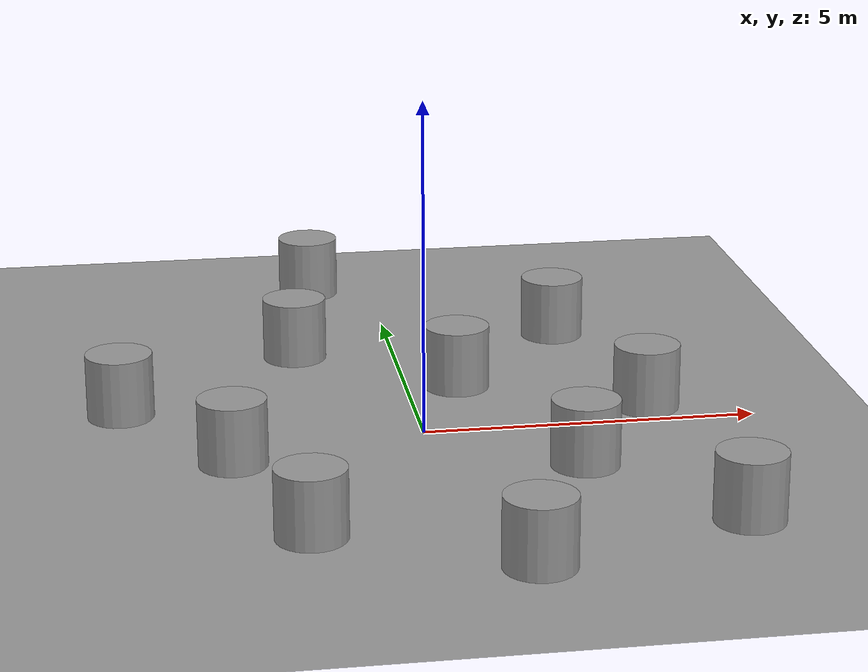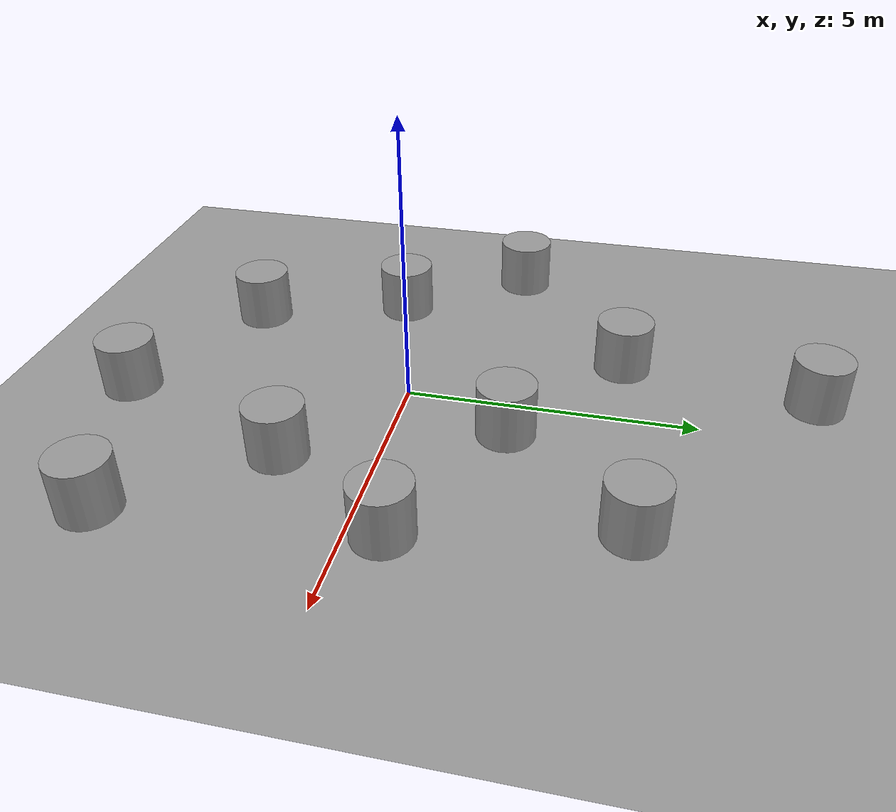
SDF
<sdf version="1.6">
 <world name="default">
  <light name="sun" type="directional">
   <pose>0 0 10 0 -0 0</pose>
   <diffuse>0.8 0.8 0.8 1</diffuse>
   <specular>0.2 0.2 0.2 1</specular>
   <attenuation>
    <range>1000</range>
    <constant>0.9</constant>
    <linear>0.01</linear>
    <quadratic>0.001</quadratic>
   </attenuation>
   <direction>0.5 0.1 -0.9</direction>
  </light>
  <scene><ambient>0.4 0.4 0.4 1</ambient><background>0.7 0.7 0.7 1</background><shadows>1</shadows></scene>
  <physics name="default_physics" default="0" type="ode">
   <max_step_size>0.01</max_step_size>
   <real_time_factor>1</real_time_factor>
   <real_time_update_rate>100</real_time_update_rate>
  </physics>
  <model name="ground_plane_0">
   <static>1</static>
   <link name="link">
    <collision name="collision">
     <geometry><plane><normal>0 0 1</normal><size>100 100</size></plane></geometry>
     <surface><friction><ode><mu>100</mu><mu2>50</mu2></ode></friction></surface>
    </collision>
    <visual name="visual">
     <cast_shadows>0</cast_shadows>
     <geometry><plane><normal>0 0 1</normal><size>100 100</size></plane></geometry>
     <material>
      <script><uri>file://media/materials/scripts/gazebo.material</uri><name>Gazebo/Grey</name></script>
     </material>
    </visual>
    <velocity_decay><linear>0</linear><angular>0</angular></velocity_decay>
   </link>
   <pose>0.497681 0 0 0 -0 0</pose>
  </model>
  <model name="unit_cylinder_1">
   <pose>-2 -3.4888 0.49912 0 -0 0</pose>
   <link name="link">
    <inertial>
     <mass>1</mass>
     <inertia><ixx>1</ixx><ixy>0</ixy><ixz>0</ixz><iyy>1</iyy><iyz>0</iyz><izz>1</izz></inertia>
    </inertial>
    <collision name="collision">
     <geometry><cylinder><radius>0.5</radius><length>1</length></cylinder></geometry>
    </collision>
    <visual name="visual">
     <geometry><cylinder><radius>0.5</radius><length>1</length></cylinder></geometry>
     <material>
      <script><uri>file://media/materials/scripts/gazebo.material</uri><name>Gazebo/Grey</name></script>
     </material>
    </visual>
    <velocity_decay><linear>0</linear><angular>0</angular></velocity_decay>
   </link>
   <static>0</static>
  </model>
  <gravity>0 0 -9.8</gravity>
  <magnetic_field>6e-06 2.3e-05 -4.2e-05</magnetic_field>
  <atmosphere type="adiabatic"/>
  <spherical_coordinates>
   <surface_model>EARTH_WGS84</surface_model>
   <latitude_deg>0</latitude_deg>
   <longitude_deg>0</longitude_deg>
   <elevation>0</elevation>
   <heading_deg>0</heading_deg>
  </spherical_coordinates>
  <model name="unit_cylinder_1_clone">
   <pose>-2.85285 -0.794241 0.49912 0 -0 0</pose>
   <link name="link">
    <inertial>
     <mass>1</mass>
     <inertia><ixx>1</ixx><ixy>0</ixy><ixz>0</ixz><iyy>1</iyy><iyz>0</iyz><izz>1</izz></inertia>
    </inertial>
    <collision name="collision">
     <geometry><cylinder><radius>0.5</radius><length>1</length></cylinder></geometry>
    </collision>
    <visual name="visual">
     <geometry><cylinder><radius>0.5</radius><length>1</length></cylinder></geometry>
     <material>
      <script><uri>file://media/materials/scripts/gazebo.material</uri><name>Gazebo/Grey</name></script>
     </material>
    </visual>
    <velocity_decay><linear>0</linear><angular>0</angular></velocity_decay>
   </link>
   <static>0</static>
  </model>
  <model name="unit_cylinder_1_clone_0">
   <pose>0.783864 1.87323 0.49912 0 -0 0</pose>
   <link name="link">
    <inertial>
     <mass>1</mass>
     <inertia><ixx>1</ixx><ixy>0</ixy><ixz>0</ixz><iyy>1</iyy><iyz>0</iyz><izz>1</izz></inertia>
    </inertial>
    <collision name="collision">
     <geometry><cylinder><radius>0.5</radius><length>1</length></cylinder></geometry>
    </collision>
    <visual name="visual">
     <geometry><cylinder><radius>0.5</radius><length>1</length></cylinder></geometry>
     <material>
      <script><uri>file://media/materials/scripts/gazebo.material</uri><name>Gazebo/Grey</name></script>
     </material>
    </visual>
    <velocity_decay><linear>0</linear><angular>0</angular></velocity_decay>
   </link>
   <static>0</static>
  </model>
  <model name="unit_cylinder_1_clone_1">
   <pose>-1.57803 3.60374 0.49912 0 -0 0</pose>
   <link name="link">
    <inertial>
     <mass>1</mass>
     <inertia><ixx>1</ixx><ixy>0</ixy><ixz>0</ixz><iyy>1</iyy><iyz>0</iyz><izz>1</izz></inertia>
    </inertial>
    <collision name="collision">
     <geometry><cylinder><radius>0.5</radius><length>1</length></cylinder></geometry>
    </collision>
    <visual name="visual">
     <geometry><cylinder><radius>0.5</radius><length>1</length></cylinder></geometry>
     <material>
      <script><uri>file://media/materials/scripts/gazebo.material</uri><name>Gazebo/Grey</name></script>
     </material>
    </visual>
    <velocity_decay><linear>0</linear><angular>0</angular></velocity_decay>
   </link>
   <static>0</static>
  </model>
  <model name="unit_cylinder_1_clone_2">
   <pose>3.48276 0.567239 0.49912 0 -0 0</pose>
   <link name="link">
    <inertial>
     <mass>1</mass>
     <inertia><ixx>1</ixx><ixy>0</ixy><ixz>0</ixz><iyy>1</iyy><iyz>0</iyz><izz>1</izz></inertia>
    </inertial>
    <collision name="collision">
     <geometry><cylinder><radius>0.5</radius><length>1</length></cylinder></geometry>
    </collision>
    <visual name="visual">
     <geometry><cylinder><radius>0.5</radius><length>1</length></cylinder></geometry>
     <material>
      <script><uri>file://media/materials/scripts/gazebo.material</uri><name>Gazebo/Grey</name></script>
     </material>
    </visual>
    <velocity_decay><linear>0</linear><angular>0</angular></velocity_decay>
   </link>
   <static>0</static>
  </model>
  <model name="unit_cylinder_1_clone_3">
   <pose>2.71862 4.07453 0.49912 0 -0 0</pose>
   <link name="link">
    <inertial>
     <mass>1</mass>
     <inertia><ixx>1</ixx><ixy>0</ixy><ixz>0</ixz><iyy>1</iyy><iyz>0</iyz><izz>1</izz></inertia>
    </inertial>
    <collision name="collision">
     <geometry><cylinder><radius>0.5</radius><length>1</length></cylinder></geometry>
    </collision>
    <visual name="visual">
     <geometry><cylinder><radius>0.5</radius><length>1</length></cylinder></geometry>
     <material>
      <script><uri>file://media/materials/scripts/gazebo.material</uri><name>Gazebo/Grey</name></script>
     </material>
    </visual>
    <velocity_decay><linear>0</linear><angular>0</angular></velocity_decay>
   </link>
   <static>0</static>
  </model>
  <model name="unit_cylinder_1_clone_4">
   <pose>2.084 -1.58197 0.49912 0 -0 0</pose>
   <link name="link">
    <inertial>
     <mass>1</mass>
     <inertia><ixx>1</ixx><ixy>0</ixy><ixz>0</ixz><iyy>1</iyy><iyz>0</iyz><izz>1</izz></inertia>
    </inertial>
    <collision name="collision">
     <geometry><cylinder><radius>0.5</radius><length>1</length></cylinder></geometry>
    </collision>
    <visual name="visual">
     <geometry><cylinder><radius>0.5</radius><length>1</length></cylinder></geometry>
     <material>
      <script><uri>file://media/materials/scripts/gazebo.material</uri><name>Gazebo/Grey</name></script>
     </material>
    </visual>
    <velocity_decay><linear>0</linear><angular>0</angular></velocity_decay>
   </link>
   <static>0</static>
  </model>
  <model name="unit_cylinder_1_clone_5">
   <pose>0.793919 -4.8479 0.49912 0 -0 0</pose>
   <link name="link">
    <inertial>
     <mass>1</mass>
     <inertia><ixx>1</ixx><ixy>0</ixy><ixz>0</ixz><iyy>1</iyy><iyz>0</iyz><izz>1</izz></inertia>
    </inertial>
    <collision name="collision">
     <geometry><cylinder><radius>0.5</radius><length>1</length></cylinder></geometry>
    </collision>
    <visual name="visual">
     <geometry><cylinder><radius>0.5</radius><length>1</length></cylinder></geometry>
     <material>
      <script><uri>file://media/materials/scripts/gazebo.material</uri><name>Gazebo/Grey</name></script>
     </material>
    </visual>
    <velocity_decay><linear>0</linear><angular>0</angular></velocity_decay>
   </link>
   <static>0</static>
  </model>
  <model name="unit_cylinder_1_clone_6">
   <pose>3.85089 -3.84021 0.49912 0 -0 0</pose>
   <link name="link">
    <inertial>
     <mass>1</mass>
     <inertia><ixx>1</ixx><ixy>0</ixy><ixz>0</ixz><iyy>1</iyy><iyz>0</iyz><izz>1</izz></inertia>
    </inertial>
    <collision name="collision">
     <geometry><cylinder><radius>0.5</radius><length>1</length></cylinder></geometry>
    </collision>
    <visual name="visual">
     <geometry><cylinder><radius>0.5</radius><length>1</length></cylinder></geometry>
     <material>
      <script><uri>file://media/materials/scripts/gazebo.material</uri><name>Gazebo/Grey</name></script>
     </material>
    </visual>
    <velocity_decay><linear>0</linear><angular>0</angular></velocity_decay>
   </link>
   <static>0</static>
  </model>
  <model name="unit_cylinder_1_clone_7">
   <pose>-1.0444 6.93119 0.49912 0 -0 0</pose>
   <link name="link">
    <inertial>
     <mass>1</mass>
     <inertia><ixx>1</ixx><ixy>0</ixy><ixz>0</ixz><iyy>1</iyy><iyz>0</iyz><izz>1</izz></inertia>
    </inertial>
    <collision name="collision">
     <geometry><cylinder><radius>0.5</radius><length>1</length></cylinder></geometry>
    </collision>
    <visual name="visual">
     <geometry><cylinder><radius>0.5</radius><length>1</length></cylinder></geometry>
     <material>
      <script><uri>file://media/materials/scripts/gazebo.material</uri><name>Gazebo/Grey</name></script>
     </material>
    </visual>
    <velocity_decay><linear>0</linear><angular>0</angular></velocity_decay>
   </link>
   <static>0</static>
  </model>
  <model name="unit_cylinder_1_clone_8">
   <pose>-4.39604 1.36094 0.49912 0 -0 0</pose>
   <link name="link">
    <inertial>
     <mass>1</mass>
     <inertia><ixx>1</ixx><ixy>0</ixy><ixz>0</ixz><iyy>1</iyy><iyz>0</iyz><izz>1</izz></inertia>
    </inertial>
    <collision name="collision">
     <geometry><cylinder><radius>0.5</radius><length>1</length></cylinder></geometry>
    </collision>
    <visual name="visual">
     <geometry><cylinder><radius>0.5</radius><length>1</length></cylinder></geometry>
     <material>
      <script><uri>file://media/materials/scripts/gazebo.material</uri><name>Gazebo/Grey</name></script>
     </material>
    </visual>
    <velocity_decay><linear>0</linear><angular>0</angular></velocity_decay>
   </link>
   <static>0</static>
  </model>
 </world>
</sdf>
